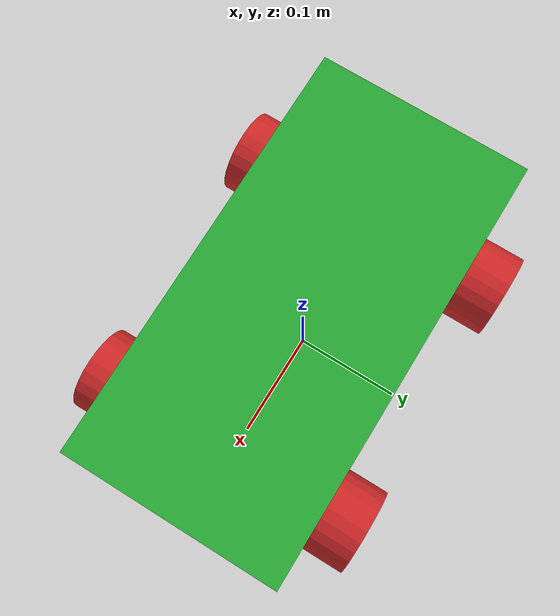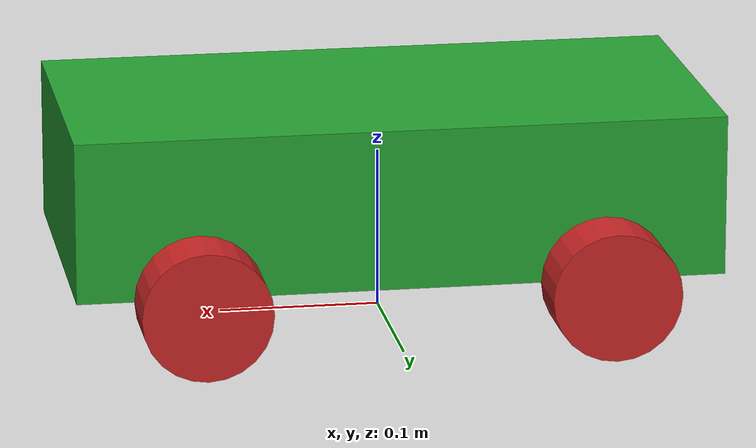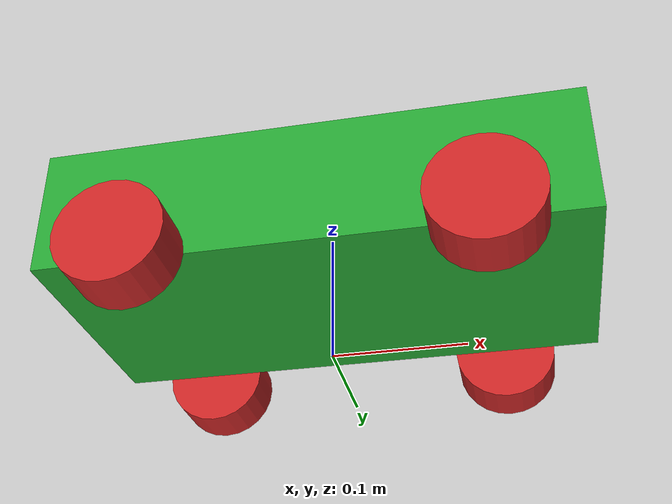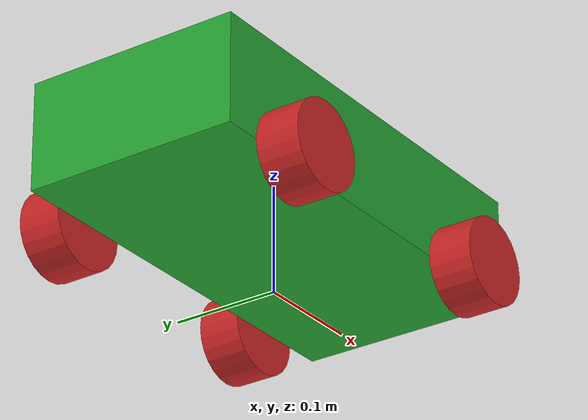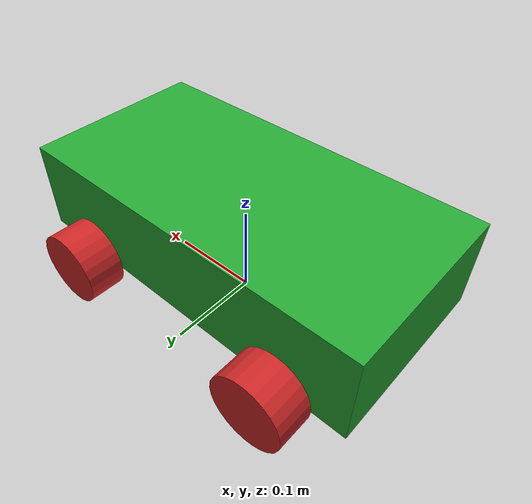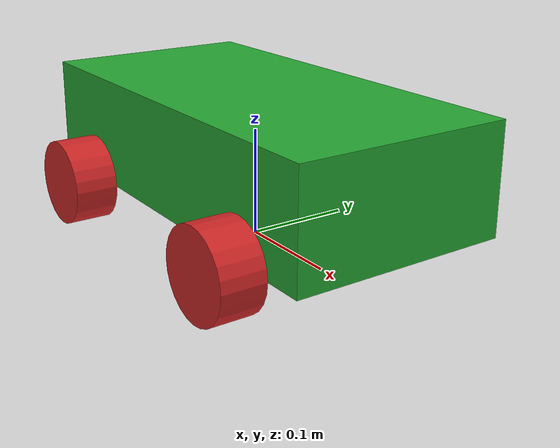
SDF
<?xml version="1.0" ?>
<sdf version="1.4">
  <model name="car">
    <link name="body">
      <pose>0 0 0.09 0 0 0</pose>
      <inertial>
        <pose>0 0 0 0 0 0</pose>
        <inertia>
          <ixx>0.41667</ixx>
          <ixy>0</ixy>
          <ixz>0</ixz>
          <iyy>1.41667</iyy>
          <iyz>0</iyz>
          <izz>1.66667</izz>
        </inertia>
        <mass>100.0</mass>
      </inertial>
      <collision name="body_col">
        <pose>0 0 0 0 0 0</pose>
        <geometry>
          <box>
            <size>0.4 0.2 0.1</size>
          </box>
        </geometry>
      </collision>
      <visual name="body_vis">
        <pose>0 0 0 0 0 0</pose>
        <geometry>
          <box>
            <size>0.4 0.2 0.1</size>
          </box>
        </geometry>
        <material>
          <script>
            <uri>file://media/materials/scripts/gazebo.material</uri>
            <name>Gazebo/Green</name>
          </script>
        </material>
      </visual>
    </link>
    <link name="rear_driveshaft">
      <pose>-0.125 0 0.04 0 1.5708 0</pose>
      <inertial>
	<pose>0 0 0 0 0 0</pose>
        <inertia>
          <ixx>0.001</ixx>
          <ixy>0</ixy>
          <ixz>0</ixz>
          <iyy>0.001</iyy>
          <iyz>0</iyz>
          <izz>0.001</izz>
        </inertia>
        <mass>1.0</mass>
      </inertial>
    </link>
    <link name="steering_link">
      <pose>0.125 0 0.04 0 1.5708 0</pose>
      <inertial>
	<pose>0 0 0 0 0 0</pose>
        <inertia>
          <ixx>0.001</ixx>
          <ixy>0</ixy>
          <ixz>0</ixz>
          <iyy>0.001</iyy>
          <iyz>0</iyz>
          <izz>0.001</izz>
        </inertia>
        <mass>1.0</mass>
      </inertial>
    </link>
    <link name="spindle_front_left">
      <pose>0.125 0.12 0.04 1.5708 0 0</pose>
      <inertial>
	<pose>0 0 0 0 0 0</pose>
        <inertia>
          <ixx>0.001</ixx>
          <ixy>0</ixy>
          <ixz>0</ixz>
          <iyy>0.001</iyy>
          <iyz>0</iyz>
          <izz>0.001</izz>
        </inertia>
        <mass>1.0</mass>
      </inertial>
    </link>
    <link name="spindle_front_right">
      <pose>0.125 -0.12 0.04 1.5708 0 0</pose>
      <inertial>
	<pose>0 0 0 0 0 0</pose>
        <inertia>
          <ixx>0.001</ixx>
          <ixy>0</ixy>
          <ixz>0</ixz>
          <iyy>0.001</iyy>
          <iyz>0</iyz>
          <izz>0.001</izz>
        </inertia>
        <mass>1.0</mass>
      </inertial>
    </link>
    <link name="wheel_front_left">
      <pose>0.125 0.12 0.04 1.5708 0 0</pose>
      <inertial>
	<pose>0 0 0 0 0 0</pose>
        <inertia>
          <ixx>0.0008</ixx>
          <ixy>0</ixy>
          <ixz>0</ixz>
          <iyy>0.000533</iyy>
          <iyz>0</iyz>
          <izz>0.000533</izz>
        </inertia>
        <mass>1.0</mass>
      </inertial>
      <collision name="wheel_front_left_col">
        <pose>0 0 0 0 0 0</pose>
        <geometry>
          <cylinder>
            <radius>0.04</radius>
            <length>0.04</length>
          </cylinder>
        </geometry>
        <surface>
          <friction>
            <ode>
              <mu>1.2</mu>
            </ode>
          </friction>
        </surface>
      </collision>
      <visual name="wheel_front_left_vis">
        <pose>0 0 0 0 0 0</pose>
        <geometry>
          <cylinder>
            <radius>0.04</radius>
            <length>0.04</length>
          </cylinder>
        </geometry>
        <material>
          <script>
            <uri>file://media/materials/scripts/gazebo.material</uri>
            <name>Gazebo/Red</name>
          </script>
        </material>
      </visual>
    </link>
    <link name="wheel_front_right">
      <pose>0.125 -0.12 0.04 1.5708 0 0</pose>
      <inertial>
	<pose>0 0 0 0 0 0</pose>
        <inertia>
          <ixx>0.0008</ixx>
          <ixy>0</ixy>
          <ixz>0</ixz>
          <iyy>0.000533</iyy>
          <iyz>0</iyz>
          <izz>0.000533</izz>
        </inertia>
        <mass>1.0</mass>
      </inertial>
      <collision name="wheel_front_right_col">
        <pose>0 0 0 0 0 0</pose>
        <geometry>
          <cylinder>
            <radius>0.04</radius>
            <length>0.04</length>
          </cylinder>
        </geometry>
        <surface>
          <friction>
            <ode>
              <mu>1.2</mu>
            </ode>
          </friction>
        </surface>
      </collision>
      <visual name="wheel_front_right_vis">
        <pose>0 0 0 0 0 0</pose>
        <geometry>
          <cylinder>
            <radius>0.04</radius>
            <length>0.04</length>
          </cylinder>
        </geometry>
        <material>
          <script>
            <uri>file://media/materials/scripts/gazebo.material</uri>
            <name>Gazebo/Red</name>
          </script>
        </material>
      </visual>
    </link>
    <link name="wheel_rear_left">
      <pose>-0.125 0.12 0.04 1.5708 0 0</pose>
      <inertial>
	<pose>0 0 0 0 0 0</pose>
        <inertia>
          <ixx>0.0008</ixx>
          <ixy>0</ixy>
          <ixz>0</ixz>
          <iyy>0.000533</iyy>
          <iyz>0</iyz>
          <izz>0.000533</izz>
        </inertia>
        <mass>1.0</mass>
      </inertial>
      <collision name="wheel_rear_left_col">
        <pose>0 0 0 0 0 0</pose>
        <geometry>
          <cylinder>
            <radius>0.04</radius>
            <length>0.04</length>
          </cylinder>
        </geometry>
        <surface>
          <friction>
            <ode>
              <mu>1.2</mu>
            </ode>
          </friction>
        </surface>
      </collision>
      <visual name="wheel_rear_left_vis">
        <pose>0 0 0 0 0 0</pose>
        <geometry>
          <cylinder>
            <radius>0.04</radius>
            <length>0.04</length>
          </cylinder>
        </geometry>
        <material>
          <script>
            <uri>file://media/materials/scripts/gazebo.material</uri>
            <name>Gazebo/Red</name>
          </script>
        </material>
      </visual>
    </link>
    <link name="wheel_rear_right">
      <pose>-0.125 -0.12 0.04 1.5708 0 0</pose>
      <inertial>
	<pose>0 0 0 0 0 0</pose>
        <inertia>
          <ixx>0.0008</ixx>
          <ixy>0</ixy>
          <ixz>0</ixz>
          <iyy>0.000533</iyy>
          <iyz>0</iyz>
          <izz>0.000533</izz>
        </inertia>
        <mass>1.0</mass>
      </inertial>
      <collision name="wheel_rear_right_col">
        <pose>0 0 0 0 0 0</pose>
        <geometry>
          <cylinder>
            <radius>0.04</radius>
            <length>0.04</length>
          </cylinder>
        </geometry>
        <surface>
          <friction>
            <ode>
              <mu>1.2</mu>
            </ode>
          </friction>
        </surface>
      </collision>
      <visual name="wheel_rear_right_vis">
        <pose>0 0 0 0 0 0</pose>
        <geometry>
          <cylinder>
            <radius>0.04</radius>
            <length>0.04</length>
          </cylinder>
        </geometry>
        <material>
          <script>
            <uri>file://media/materials/scripts/gazebo.material</uri>
            <name>Gazebo/Red</name>
          </script>
        </material>
      </visual>
    </link>

    <!-- STEERING JOINTS -->
    <joint name="steering_box" type="revolute">
      <parent>body</parent>
      <child>steering_link</child>
      <axis>
        <dynamics>
          <damping>0.000000</damping>
          <friction>0.000000</friction>
        </dynamics>
        <xyz>1 0 0</xyz>
      </axis>
    </joint>
    <joint name="rear_differential" type="revolute">
      <parent>body</parent>
      <child>rear_driveshaft</child>
      <axis>
        <dynamics>
          <damping>0.000000</damping>
          <friction>0.000000</friction>
        </dynamics>
        <xyz>1 0 0</xyz>
      </axis>
    </joint>
    <joint name="kingpin_front_left" type="revolute">
      <parent>body</parent>
      <child>spindle_front_left</child>
      <axis>
        <dynamics>
          <damping>0.000000</damping>
          <friction>0.000000</friction>
        </dynamics>
        <xyz>0 0 1</xyz>
      </axis>
    </joint>
    <joint name="kingpin_front_right" type="revolute">
      <parent>body</parent>
      <child>spindle_front_right</child>
      <axis>
        <dynamics>
          <damping>0.000000</damping>
          <friction>0.000000</friction>
        </dynamics>
        <xyz>0 0 1</xyz>
      </axis>
    </joint>

    <!-- WHEEL BEARINGS -->
    <joint name="bearing_front_left" type="revolute">
      <parent>spindle_front_left</parent>
      <child>wheel_front_left</child>
      <axis>
        <dynamics>
          <damping>0.000000</damping>
          <friction>0.000000</friction>
        </dynamics>
        <xyz>0 1 0</xyz>
      </axis>
    </joint>
    <joint name="bearing_front_right" type="revolute">
      <parent>spindle_front_right</parent>
      <child>wheel_front_right</child>
      <axis>
        <dynamics>
          <damping>0.000000</damping>
          <friction>0.000000</friction>
        </dynamics>
        <xyz>0 1 0</xyz>
      </axis>
    </joint>
    <joint name="bearing_rear_left" type="revolute">
      <parent>body</parent>
      <child>wheel_rear_left</child>
      <axis>
        <dynamics>
          <damping>0.000000</damping>
          <friction>0.000000</friction>
        </dynamics>
        <xyz>0 1 0</xyz>
      </axis>
    </joint>
    <joint name="bearing_rear_right" type="revolute">
      <parent>body</parent>
      <child>wheel_rear_right</child>
      <axis>
        <dynamics>
          <damping>0.000000</damping>
          <friction>0.000000</friction>
        </dynamics>
        <xyz>0 1 0</xyz>
      </axis>
    </joint>

    <plugin name='car_controller' filename='libcar_controller.so'>
      <planner>rrt</planner>     <!--lissajous|rrt|walk-->
      <steering>fourbar</steering>      <!--direct|fourbar-->
      <max_speed>1.0</max_speed>
      <max_acceleration>1.0</max_acceleration>
      <max_steering_velocity>0.31416</max_steering_velocity>
      <!-- Random Walk -->
      <walk_planner_step_size>0.25</walk_planner_step_size>
      <walk_steering_control_kp>120.0</walk_steering_control_kp>
      <walk_steering_control_kd>0.16</walk_steering_control_kd>
      <walk_speed_control_kp>250.0</walk_speed_control_kp>
      <walk_mean>0.0</walk_mean>
      <walk_variance>35.0</walk_variance>
      <!-- RRT -->
      <rrt_planner_step_size>0.25</rrt_planner_step_size>
      <rrt_steering_control_kp>120.0</rrt_steering_control_kp>
      <rrt_steering_control_kd>0.16</rrt_steering_control_kd>
      <rrt_speed_control_kp>1000.0</rrt_speed_control_kp>
      <rrt_fb_ks>0.5</rrt_fb_ks>
      <rrt_fb_kd>0.0001</rrt_fb_kd>
      <rrt_fb_du_speed>1.2</rrt_fb_du_speed>
      <rrt_fb_du_angle>1.0</rrt_fb_du_angle>
      <rrt_fb_max_speed>0.1</rrt_fb_max_speed>
      <rrt_fb_max_angle>0.05</rrt_fb_max_angle>
      <!-- Lissajous -->
      <lissajous_planner_step_size>0.025</lissajous_planner_step_size>
      <lissajous_steering_control_kp>120.0</lissajous_steering_control_kp>
      <lissajous_steering_control_kd>0.16</lissajous_steering_control_kd>
      <lissajous_speed_control_kp>250.0</lissajous_speed_control_kp>
      <lissajous_fb_ks>0.5</lissajous_fb_ks>
      <lissajous_fb_kd>0.0001</lissajous_fb_kd>
      <lissajous_fb_du_speed>1.2</lissajous_fb_du_speed>
      <lissajous_fb_du_angle>1.0</lissajous_fb_du_angle>
      <lissajous_fb_max_speed>0.1</lissajous_fb_max_speed>
      <lissajous_fb_max_angle>0.05</lissajous_fb_max_angle>
      <lissajous_planner_ks>0.500</lissajous_planner_ks>
      <lissajous_planner_kd>0.0001</lissajous_planner_kd>
      <lissajous_planner_du_speed>48.00</lissajous_planner_du_speed>
      <lissajous_planner_du_angle>1.425</lissajous_planner_du_angle>
      <!-- Double 4 Bar Steering Linkage - Tune at own risk -->
      <max_steering_angle_deg>30.0</max_steering_angle_deg>
      <steering_lever_base_angle_deg>75.0</steering_lever_base_angle_deg>
      <steering_lever_length>0.056102</steering_lever_length>
      <tie_rod_length>0.1</tie_rod_length>
      <spindle_lever_length>0.055</spindle_lever_length>
    </plugin>

  </model>
</sdf>
